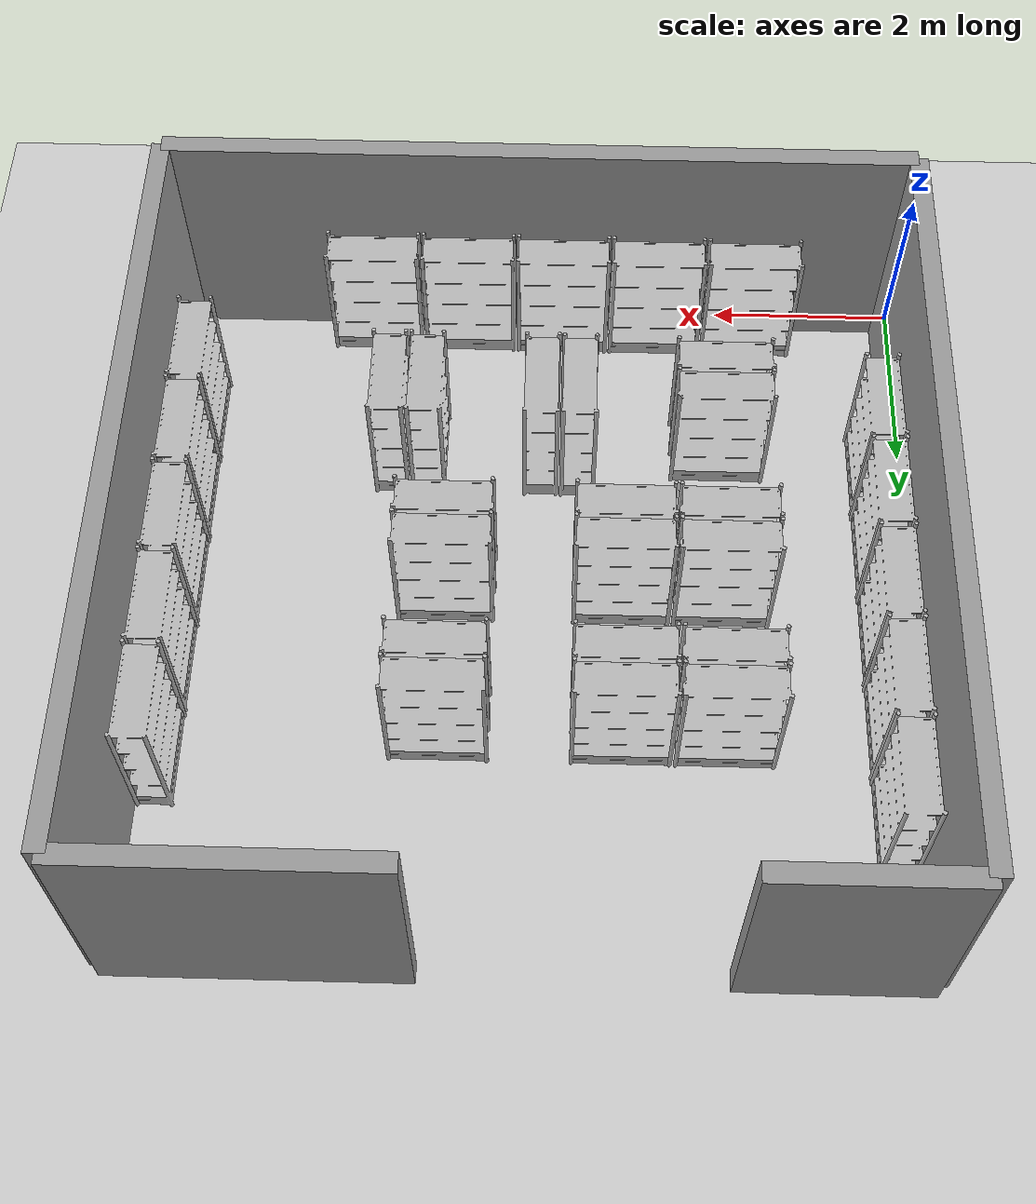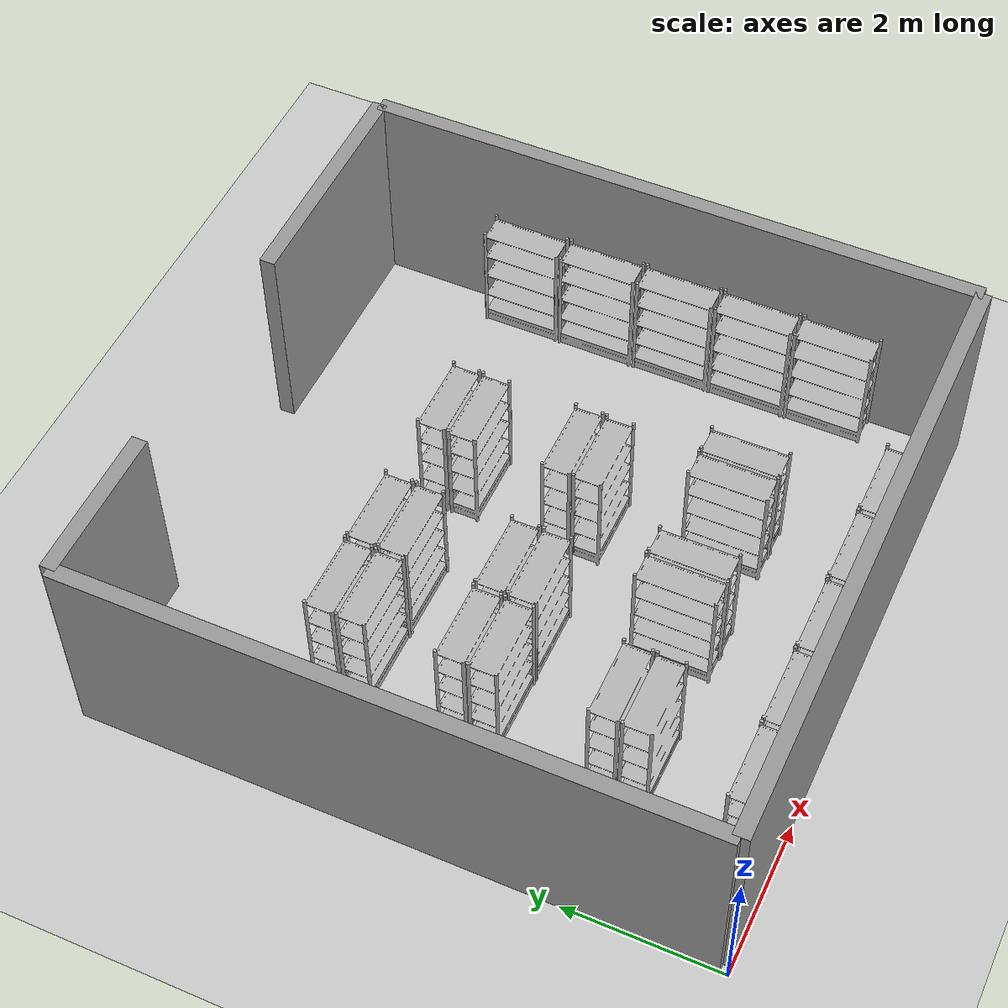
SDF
<sdf version="1.6">
  <world name="default">
    <light name="sun" type="directional">
      <cast_shadows>1</cast_shadows>
      <pose frame="">0 0 10 0 -0 0</pose>
      <diffuse>0.8 0.8 0.8 1</diffuse>
      <specular>0.2 0.2 0.2 1</specular>
      <attenuation>
        <range>1000</range>
        <constant>0.9</constant>
        <linear>0.01</linear>
        <quadratic>0.001</quadratic>
      </attenuation>
      <direction>-0.5 0.1 -0.9</direction>
    </light>
    <model name="ground_plane">
      <static>1</static>
      <link name="link">
        <collision name="collision">
          <geometry>
            <plane>
              <normal>0 0 1</normal>
              <size>100 100</size>
            </plane>
          </geometry>
          <surface>
            <contact>
              <collide_bitmask>65535</collide_bitmask>
              <ode />
            </contact>
            <friction>
              <ode>
                <mu>1000</mu>
                <mu2>1000</mu2>
              </ode>
              <torsional>
                <ode />
              </torsional>
            </friction>
            <bounce />
          </surface>
          <max_contacts>10</max_contacts>
        </collision>
        <visual name="visual">
          <cast_shadows>0</cast_shadows>
          <geometry>
            <plane>
              <normal>0 0 1</normal>
              <size>100 100</size>
            </plane>
          </geometry>
          <material>
            <script>
              <uri>file://media/materials/scripts/gazebo.material</uri>
              <name>Gazebo/Grey</name>
            </script>
          </material>
        </visual>
        <self_collide>0</self_collide>
        <enable_wind>0</enable_wind>
        <kinematic>0</kinematic>
      </link>
    </model>
    <gravity>0 0 -9.8</gravity>
    <magnetic_field>6e-06 2.3e-05 -4.2e-05</magnetic_field>
    <atmosphere type="adiabatic" />
    <physics name="default_physics" default="0" type="ode">
      <max_step_size>0.001</max_step_size>
      <real_time_factor>1</real_time_factor>
      <real_time_update_rate>1000</real_time_update_rate>
    </physics>
    <scene>
      <ambient>0.4 0.4 0.4 1</ambient>
      <background>0.7 0.7 0.7 1</background>
      <shadows>1</shadows>
    </scene>
    <audio>
      <device>default</device>
    </audio>
    <wind />
    <spherical_coordinates>
      <surface_model>EARTH_WGS84</surface_model>
      <latitude_deg>0</latitude_deg>
      <longitude_deg>0</longitude_deg>
      <elevation>0</elevation>
      <heading_deg>0</heading_deg>
    </spherical_coordinates>
    <gui fullscreen="0">
      <camera name="user_camera">
        <pose frame="">5.5458 -17.3868 19.7357 0 0.841797 1.67218</pose>
        <view_controller>orbit</view_controller>
        <projection_type>perspective</projection_type>
      </camera>
    </gui>
    <plugin name="ActorPosesPlugin" filename="libActorPosesPlugin.so" />
    <model name="store_shelf_moduled_0">
      <link name="link">
        <collision name="collision">
          <geometry>
            <mesh>
              <uri>model://store_shelf_moduled/meshes/store_shelf_moduled.dae</uri>
            </mesh>
          </geometry>
        </collision>
        <visual name="visual">
          <geometry>
            <mesh>
              <uri>model://store_shelf_moduled/meshes/store_shelf_moduled.dae</uri>
            </mesh>
          </geometry>
        </visual>
        <inertial>
          <mass>1000</mass>
          <inertia>
            <ixx>840083</ixx>
            <ixy>0</ixy>
            <ixz>0</ixz>
            <iyy>475500</iyy>
            <iyz>0</iyz>
            <izz>1.30208e+06</izz>
          </inertia>
        </inertial>
        <self_collide>0</self_collide>
        <enable_wind>0</enable_wind>
        <kinematic>0</kinematic>
      </link>
      <static>1</static>
      <pose frame="">1.16 0.2 0 0 0 0</pose>
    </model>
    <model name="store_shelf_moduled_1">
      <link name="link">
        <collision name="collision">
          <geometry>
            <mesh>
              <uri>model://store_shelf_moduled/meshes/store_shelf_moduled.dae</uri>
            </mesh>
          </geometry>
        </collision>
        <visual name="visual">
          <geometry>
            <mesh>
              <uri>model://store_shelf_moduled/meshes/store_shelf_moduled.dae</uri>
            </mesh>
          </geometry>
        </visual>
        <inertial>
          <mass>1000</mass>
          <inertia>
            <ixx>840083</ixx>
            <ixy>0</ixy>
            <ixz>0</ixz>
            <iyy>475500</iyy>
            <iyz>0</iyz>
            <izz>1.30208e+06</izz>
          </inertia>
        </inertial>
        <self_collide>0</self_collide>
        <enable_wind>0</enable_wind>
        <kinematic>0</kinematic>
      </link>
      <static>1</static>
      <pose frame="">2.22 0.2 0 0 0 0</pose>
    </model>
    <model name="store_shelf_moduled_2">
      <link name="link">
        <collision name="collision">
          <geometry>
            <mesh>
              <uri>model://store_shelf_moduled/meshes/store_shelf_moduled.dae</uri>
            </mesh>
          </geometry>
        </collision>
        <visual name="visual">
          <geometry>
            <mesh>
              <uri>model://store_shelf_moduled/meshes/store_shelf_moduled.dae</uri>
            </mesh>
          </geometry>
        </visual>
        <inertial>
          <mass>1000</mass>
          <inertia>
            <ixx>840083</ixx>
            <ixy>0</ixy>
            <ixz>0</ixz>
            <iyy>475500</iyy>
            <iyz>0</iyz>
            <izz>1.30208e+06</izz>
          </inertia>
        </inertial>
        <self_collide>0</self_collide>
        <enable_wind>0</enable_wind>
        <kinematic>0</kinematic>
      </link>
      <static>1</static>
      <pose frame="">3.28 0.2 0 0 0 0</pose>
    </model>
    <model name="store_shelf_moduled_3">
      <link name="link">
        <collision name="collision">
          <geometry>
            <mesh>
              <uri>model://store_shelf_moduled/meshes/store_shelf_moduled.dae</uri>
            </mesh>
          </geometry>
        </collision>
        <visual name="visual">
          <geometry>
            <mesh>
              <uri>model://store_shelf_moduled/meshes/store_shelf_moduled.dae</uri>
            </mesh>
          </geometry>
        </visual>
        <inertial>
          <mass>1000</mass>
          <inertia>
            <ixx>840083</ixx>
            <ixy>0</ixy>
            <ixz>0</ixz>
            <iyy>475500</iyy>
            <iyz>0</iyz>
            <izz>1.30208e+06</izz>
          </inertia>
        </inertial>
        <self_collide>0</self_collide>
        <enable_wind>0</enable_wind>
        <kinematic>0</kinematic>
      </link>
      <static>1</static>
      <pose frame="">4.34 0.2 0 0 0 0</pose>
    </model>
    <model name="store_shelf_moduled_4">
      <link name="link">
        <collision name="collision">
          <geometry>
            <mesh>
              <uri>model://store_shelf_moduled/meshes/store_shelf_moduled.dae</uri>
            </mesh>
          </geometry>
        </collision>
        <visual name="visual">
          <geometry>
            <mesh>
              <uri>model://store_shelf_moduled/meshes/store_shelf_moduled.dae</uri>
            </mesh>
          </geometry>
        </visual>
        <inertial>
          <mass>1000</mass>
          <inertia>
            <ixx>840083</ixx>
            <ixy>0</ixy>
            <ixz>0</ixz>
            <iyy>475500</iyy>
            <iyz>0</iyz>
            <izz>1.30208e+06</izz>
          </inertia>
        </inertial>
        <self_collide>0</self_collide>
        <enable_wind>0</enable_wind>
        <kinematic>0</kinematic>
      </link>
      <static>1</static>
      <pose frame="">5.4 0.2 0 0 0 0</pose>
    </model>
    <model name="store_shelf_moduled_5">
      <link name="link">
        <collision name="collision">
          <geometry>
            <mesh>
              <uri>model://store_shelf_moduled/meshes/store_shelf_moduled.dae</uri>
            </mesh>
          </geometry>
        </collision>
        <visual name="visual">
          <geometry>
            <mesh>
              <uri>model://store_shelf_moduled/meshes/store_shelf_moduled.dae</uri>
            </mesh>
          </geometry>
        </visual>
        <inertial>
          <mass>1000</mass>
          <inertia>
            <ixx>840083</ixx>
            <ixy>0</ixy>
            <ixz>0</ixz>
            <iyy>475500</iyy>
            <iyz>0</iyz>
            <izz>1.30208e+06</izz>
          </inertia>
        </inertial>
        <self_collide>0</self_collide>
        <enable_wind>0</enable_wind>
        <kinematic>0</kinematic>
      </link>
      <static>1</static>
      <pose frame="">8 1.16 0 0 0 1.570796</pose>
    </model>
    <model name="store_shelf_moduled_6">
      <link name="link">
        <collision name="collision">
          <geometry>
            <mesh>
              <uri>model://store_shelf_moduled/meshes/store_shelf_moduled.dae</uri>
            </mesh>
          </geometry>
        </collision>
        <visual name="visual">
          <geometry>
            <mesh>
              <uri>model://store_shelf_moduled/meshes/store_shelf_moduled.dae</uri>
            </mesh>
          </geometry>
        </visual>
        <inertial>
          <mass>1000</mass>
          <inertia>
            <ixx>840083</ixx>
            <ixy>0</ixy>
            <ixz>0</ixz>
            <iyy>475500</iyy>
            <iyz>0</iyz>
            <izz>1.30208e+06</izz>
          </inertia>
        </inertial>
        <self_collide>0</self_collide>
        <enable_wind>0</enable_wind>
        <kinematic>0</kinematic>
      </link>
      <static>1</static>
      <pose frame="">8 2.22 0 0 0 1.570796</pose>
    </model>
    <model name="store_shelf_moduled_7">
      <link name="link">
        <collision name="collision">
          <geometry>
            <mesh>
              <uri>model://store_shelf_moduled/meshes/store_shelf_moduled.dae</uri>
            </mesh>
          </geometry>
        </collision>
        <visual name="visual">
          <geometry>
            <mesh>
              <uri>model://store_shelf_moduled/meshes/store_shelf_moduled.dae</uri>
            </mesh>
          </geometry>
        </visual>
        <inertial>
          <mass>1000</mass>
          <inertia>
            <ixx>840083</ixx>
            <ixy>0</ixy>
            <ixz>0</ixz>
            <iyy>475500</iyy>
            <iyz>0</iyz>
            <izz>1.30208e+06</izz>
          </inertia>
        </inertial>
        <self_collide>0</self_collide>
        <enable_wind>0</enable_wind>
        <kinematic>0</kinematic>
      </link>
      <static>1</static>
      <pose frame="">8 3.28 0 0 0 1.570796</pose>
    </model>
    <model name="store_shelf_moduled_8">
      <link name="link">
        <collision name="collision">
          <geometry>
            <mesh>
              <uri>model://store_shelf_moduled/meshes/store_shelf_moduled.dae</uri>
            </mesh>
          </geometry>
        </collision>
        <visual name="visual">
          <geometry>
            <mesh>
              <uri>model://store_shelf_moduled/meshes/store_shelf_moduled.dae</uri>
            </mesh>
          </geometry>
        </visual>
        <inertial>
          <mass>1000</mass>
          <inertia>
            <ixx>840083</ixx>
            <ixy>0</ixy>
            <ixz>0</ixz>
            <iyy>475500</iyy>
            <iyz>0</iyz>
            <izz>1.30208e+06</izz>
          </inertia>
        </inertial>
        <self_collide>0</self_collide>
        <enable_wind>0</enable_wind>
        <kinematic>0</kinematic>
      </link>
      <static>1</static>
      <pose frame="">8 4.34 0 0 0 1.570796</pose>
    </model>
    <model name="store_shelf_moduled_9">
      <link name="link">
        <collision name="collision">
          <geometry>
            <mesh>
              <uri>model://store_shelf_moduled/meshes/store_shelf_moduled.dae</uri>
            </mesh>
          </geometry>
        </collision>
        <visual name="visual">
          <geometry>
            <mesh>
              <uri>model://store_shelf_moduled/meshes/store_shelf_moduled.dae</uri>
            </mesh>
          </geometry>
        </visual>
        <inertial>
          <mass>1000</mass>
          <inertia>
            <ixx>840083</ixx>
            <ixy>0</ixy>
            <ixz>0</ixz>
            <iyy>475500</iyy>
            <iyz>0</iyz>
            <izz>1.30208e+06</izz>
          </inertia>
        </inertial>
        <self_collide>0</self_collide>
        <enable_wind>0</enable_wind>
        <kinematic>0</kinematic>
      </link>
      <static>1</static>
      <pose frame="">8 5.4 0 0 0 1.570796</pose>
    </model>
    <model name="store_shelf_moduled_10">
      <link name="link">
        <collision name="collision">
          <geometry>
            <mesh>
              <uri>model://store_shelf_moduled/meshes/store_shelf_moduled.dae</uri>
            </mesh>
          </geometry>
        </collision>
        <visual name="visual">
          <geometry>
            <mesh>
              <uri>model://store_shelf_moduled/meshes/store_shelf_moduled.dae</uri>
            </mesh>
          </geometry>
        </visual>
        <inertial>
          <mass>1000</mass>
          <inertia>
            <ixx>840083</ixx>
            <ixy>0</ixy>
            <ixz>0</ixz>
            <iyy>475500</iyy>
            <iyz>0</iyz>
            <izz>1.30208e+06</izz>
          </inertia>
        </inertial>
        <self_collide>0</self_collide>
        <enable_wind>0</enable_wind>
        <kinematic>0</kinematic>
      </link>
      <static>1</static>
      <pose frame="">0.2 7.04 0 0 0 -1.570796</pose>
    </model>
    <model name="store_shelf_moduled_11">
      <link name="link">
        <collision name="collision">
          <geometry>
            <mesh>
              <uri>model://store_shelf_moduled/meshes/store_shelf_moduled.dae</uri>
            </mesh>
          </geometry>
        </collision>
        <visual name="visual">
          <geometry>
            <mesh>
              <uri>model://store_shelf_moduled/meshes/store_shelf_moduled.dae</uri>
            </mesh>
          </geometry>
        </visual>
        <inertial>
          <mass>1000</mass>
          <inertia>
            <ixx>840083</ixx>
            <ixy>0</ixy>
            <ixz>0</ixz>
            <iyy>475500</iyy>
            <iyz>0</iyz>
            <izz>1.30208e+06</izz>
          </inertia>
        </inertial>
        <self_collide>0</self_collide>
        <enable_wind>0</enable_wind>
        <kinematic>0</kinematic>
      </link>
      <static>1</static>
      <pose frame="">0.2 5.98 0 0 0 -1.570796</pose>
    </model>
    <model name="store_shelf_moduled_12">
      <link name="link">
        <collision name="collision">
          <geometry>
            <mesh>
              <uri>model://store_shelf_moduled/meshes/store_shelf_moduled.dae</uri>
            </mesh>
          </geometry>
        </collision>
        <visual name="visual">
          <geometry>
            <mesh>
              <uri>model://store_shelf_moduled/meshes/store_shelf_moduled.dae</uri>
            </mesh>
          </geometry>
        </visual>
        <inertial>
          <mass>1000</mass>
          <inertia>
            <ixx>840083</ixx>
            <ixy>0</ixy>
            <ixz>0</ixz>
            <iyy>475500</iyy>
            <iyz>0</iyz>
            <izz>1.30208e+06</izz>
          </inertia>
        </inertial>
        <self_collide>0</self_collide>
        <enable_wind>0</enable_wind>
        <kinematic>0</kinematic>
      </link>
      <static>1</static>
      <pose frame="">0.2 4.92 0 0 0 -1.570796</pose>
    </model>
    <model name="store_shelf_moduled_13">
      <link name="link">
        <collision name="collision">
          <geometry>
            <mesh>
              <uri>model://store_shelf_moduled/meshes/store_shelf_moduled.dae</uri>
            </mesh>
          </geometry>
        </collision>
        <visual name="visual">
          <geometry>
            <mesh>
              <uri>model://store_shelf_moduled/meshes/store_shelf_moduled.dae</uri>
            </mesh>
          </geometry>
        </visual>
        <inertial>
          <mass>1000</mass>
          <inertia>
            <ixx>840083</ixx>
            <ixy>0</ixy>
            <ixz>0</ixz>
            <iyy>475500</iyy>
            <iyz>0</iyz>
            <izz>1.30208e+06</izz>
          </inertia>
        </inertial>
        <self_collide>0</self_collide>
        <enable_wind>0</enable_wind>
        <kinematic>0</kinematic>
      </link>
      <static>1</static>
      <pose frame="">0.2 3.86 0 0 0 -1.570796</pose>
    </model>
    <model name="store_shelf_moduled_14">
      <link name="link">
        <collision name="collision">
          <geometry>
            <mesh>
              <uri>model://store_shelf_moduled/meshes/store_shelf_moduled.dae</uri>
            </mesh>
          </geometry>
        </collision>
        <visual name="visual">
          <geometry>
            <mesh>
              <uri>model://store_shelf_moduled/meshes/store_shelf_moduled.dae</uri>
            </mesh>
          </geometry>
        </visual>
        <inertial>
          <mass>1000</mass>
          <inertia>
            <ixx>840083</ixx>
            <ixy>0</ixy>
            <ixz>0</ixz>
            <iyy>475500</iyy>
            <iyz>0</iyz>
            <izz>1.30208e+06</izz>
          </inertia>
        </inertial>
        <self_collide>0</self_collide>
        <enable_wind>0</enable_wind>
        <kinematic>0</kinematic>
      </link>
      <static>1</static>
      <pose frame="">0.2 2.8 0 0 0 -1.570796</pose>
    </model>
    <model name="store_shelf_moduled_15">
      <link name="link">
        <collision name="collision">
          <geometry>
            <mesh>
              <uri>model://store_shelf_moduled/meshes/store_shelf_moduled.dae</uri>
            </mesh>
          </geometry>
        </collision>
        <visual name="visual">
          <geometry>
            <mesh>
              <uri>model://store_shelf_moduled/meshes/store_shelf_moduled.dae</uri>
            </mesh>
          </geometry>
        </visual>
        <inertial>
          <mass>1000</mass>
          <inertia>
            <ixx>840083</ixx>
            <ixy>0</ixy>
            <ixz>0</ixz>
            <iyy>475500</iyy>
            <iyz>0</iyz>
            <izz>1.30208e+06</izz>
          </inertia>
        </inertial>
        <self_collide>0</self_collide>
        <enable_wind>0</enable_wind>
        <kinematic>0</kinematic>
      </link>
      <static>1</static>
      <pose frame="">4.45 5.48 0 0 0 0</pose>
    </model>
    <model name="store_shelf_moduled_16">
      <link name="link">
        <collision name="collision">
          <geometry>
            <mesh>
              <uri>model://store_shelf_moduled/meshes/store_shelf_moduled.dae</uri>
            </mesh>
          </geometry>
        </collision>
        <visual name="visual">
          <geometry>
            <mesh>
              <uri>model://store_shelf_moduled/meshes/store_shelf_moduled.dae</uri>
            </mesh>
          </geometry>
        </visual>
        <inertial>
          <mass>1000</mass>
          <inertia>
            <ixx>840083</ixx>
            <ixy>0</ixy>
            <ixz>0</ixz>
            <iyy>475500</iyy>
            <iyz>0</iyz>
            <izz>1.30208e+06</izz>
          </inertia>
        </inertial>
        <self_collide>0</self_collide>
        <enable_wind>0</enable_wind>
        <kinematic>0</kinematic>
      </link>
      <static>1</static>
      <pose frame="">5.51 5.48 0 0 0 -3.141593</pose>
    </model>
    <model name="store_shelf_moduled_17">
      <link name="link">
        <collision name="collision">
          <geometry>
            <mesh>
              <uri>model://store_shelf_moduled/meshes/store_shelf_moduled.dae</uri>
            </mesh>
          </geometry>
        </collision>
        <visual name="visual">
          <geometry>
            <mesh>
              <uri>model://store_shelf_moduled/meshes/store_shelf_moduled.dae</uri>
            </mesh>
          </geometry>
        </visual>
        <inertial>
          <mass>1000</mass>
          <inertia>
            <ixx>840083</ixx>
            <ixy>0</ixy>
            <ixz>0</ixz>
            <iyy>475500</iyy>
            <iyz>0</iyz>
            <izz>1.30208e+06</izz>
          </inertia>
        </inertial>
        <self_collide>0</self_collide>
        <enable_wind>0</enable_wind>
        <kinematic>0</kinematic>
      </link>
      <static>1</static>
      <pose frame="">5.45 1.56 0 0 0 1.570796</pose>
    </model>
    <model name="store_shelf_moduled_18">
      <link name="link">
        <collision name="collision">
          <geometry>
            <mesh>
              <uri>model://store_shelf_moduled/meshes/store_shelf_moduled.dae</uri>
            </mesh>
          </geometry>
        </collision>
        <visual name="visual">
          <geometry>
            <mesh>
              <uri>model://store_shelf_moduled/meshes/store_shelf_moduled.dae</uri>
            </mesh>
          </geometry>
        </visual>
        <inertial>
          <mass>1000</mass>
          <inertia>
            <ixx>840083</ixx>
            <ixy>0</ixy>
            <ixz>0</ixz>
            <iyy>475500</iyy>
            <iyz>0</iyz>
            <izz>1.30208e+06</izz>
          </inertia>
        </inertial>
        <self_collide>0</self_collide>
        <enable_wind>0</enable_wind>
        <kinematic>0</kinematic>
      </link>
      <static>1</static>
      <pose frame="">5.45 2.62 0 0 0 -1.570796</pose>
    </model>
    <model name="store_shelf_moduled_19">
      <link name="link">
        <collision name="collision">
          <geometry>
            <mesh>
              <uri>model://store_shelf_moduled/meshes/store_shelf_moduled.dae</uri>
            </mesh>
          </geometry>
        </collision>
        <visual name="visual">
          <geometry>
            <mesh>
              <uri>model://store_shelf_moduled/meshes/store_shelf_moduled.dae</uri>
            </mesh>
          </geometry>
        </visual>
        <inertial>
          <mass>1000</mass>
          <inertia>
            <ixx>840083</ixx>
            <ixy>0</ixy>
            <ixz>0</ixz>
            <iyy>475500</iyy>
            <iyz>0</iyz>
            <izz>1.30208e+06</izz>
          </inertia>
        </inertial>
        <self_collide>0</self_collide>
        <enable_wind>0</enable_wind>
        <kinematic>0</kinematic>
      </link>
      <static>1</static>
      <pose frame="">4.45 3.84 0 0 0 0</pose>
    </model>
    <model name="store_shelf_moduled_20">
      <link name="link">
        <collision name="collision">
          <geometry>
            <mesh>
              <uri>model://store_shelf_moduled/meshes/store_shelf_moduled.dae</uri>
            </mesh>
          </geometry>
        </collision>
        <visual name="visual">
          <geometry>
            <mesh>
              <uri>model://store_shelf_moduled/meshes/store_shelf_moduled.dae</uri>
            </mesh>
          </geometry>
        </visual>
        <inertial>
          <mass>1000</mass>
          <inertia>
            <ixx>840083</ixx>
            <ixy>0</ixy>
            <ixz>0</ixz>
            <iyy>475500</iyy>
            <iyz>0</iyz>
            <izz>1.30208e+06</izz>
          </inertia>
        </inertial>
        <self_collide>0</self_collide>
        <enable_wind>0</enable_wind>
        <kinematic>0</kinematic>
      </link>
      <static>1</static>
      <pose frame="">5.51 3.84 0 0 0 -3.141593</pose>
    </model>
    <model name="store_shelf_moduled_21">
      <link name="link">
        <collision name="collision">
          <geometry>
            <mesh>
              <uri>model://store_shelf_moduled/meshes/store_shelf_moduled.dae</uri>
            </mesh>
          </geometry>
        </collision>
        <visual name="visual">
          <geometry>
            <mesh>
              <uri>model://store_shelf_moduled/meshes/store_shelf_moduled.dae</uri>
            </mesh>
          </geometry>
        </visual>
        <inertial>
          <mass>1000</mass>
          <inertia>
            <ixx>840083</ixx>
            <ixy>0</ixy>
            <ixz>0</ixz>
            <iyy>475500</iyy>
            <iyz>0</iyz>
            <izz>1.30208e+06</izz>
          </inertia>
        </inertial>
        <self_collide>0</self_collide>
        <enable_wind>0</enable_wind>
        <kinematic>0</kinematic>
      </link>
      <static>1</static>
      <pose frame="">1.53 3.84 0 0 0 0</pose>
    </model>
    <model name="store_shelf_moduled_22">
      <link name="link">
        <collision name="collision">
          <geometry>
            <mesh>
              <uri>model://store_shelf_moduled/meshes/store_shelf_moduled.dae</uri>
            </mesh>
          </geometry>
        </collision>
        <visual name="visual">
          <geometry>
            <mesh>
              <uri>model://store_shelf_moduled/meshes/store_shelf_moduled.dae</uri>
            </mesh>
          </geometry>
        </visual>
        <inertial>
          <mass>1000</mass>
          <inertia>
            <ixx>840083</ixx>
            <ixy>0</ixy>
            <ixz>0</ixz>
            <iyy>475500</iyy>
            <iyz>0</iyz>
            <izz>1.30208e+06</izz>
          </inertia>
        </inertial>
        <self_collide>0</self_collide>
        <enable_wind>0</enable_wind>
        <kinematic>0</kinematic>
      </link>
      <static>1</static>
      <pose frame="">2.59 3.84 0 0 0 -3.141593</pose>
    </model>
    <model name="store_shelf_moduled_23">
      <link name="link">
        <collision name="collision">
          <geometry>
            <mesh>
              <uri>model://store_shelf_moduled/meshes/store_shelf_moduled.dae</uri>
            </mesh>
          </geometry>
        </collision>
        <visual name="visual">
          <geometry>
            <mesh>
              <uri>model://store_shelf_moduled/meshes/store_shelf_moduled.dae</uri>
            </mesh>
          </geometry>
        </visual>
        <inertial>
          <mass>1000</mass>
          <inertia>
            <ixx>840083</ixx>
            <ixy>0</ixy>
            <ixz>0</ixz>
            <iyy>475500</iyy>
            <iyz>0</iyz>
            <izz>1.30208e+06</izz>
          </inertia>
        </inertial>
        <self_collide>0</self_collide>
        <enable_wind>0</enable_wind>
        <kinematic>0</kinematic>
      </link>
      <static>1</static>
      <pose frame="">2.59 3.84 0 0 0 0</pose>
    </model>
    <model name="store_shelf_moduled_24">
      <link name="link">
        <collision name="collision">
          <geometry>
            <mesh>
              <uri>model://store_shelf_moduled/meshes/store_shelf_moduled.dae</uri>
            </mesh>
          </geometry>
        </collision>
        <visual name="visual">
          <geometry>
            <mesh>
              <uri>model://store_shelf_moduled/meshes/store_shelf_moduled.dae</uri>
            </mesh>
          </geometry>
        </visual>
        <inertial>
          <mass>1000</mass>
          <inertia>
            <ixx>840083</ixx>
            <ixy>0</ixy>
            <ixz>0</ixz>
            <iyy>475500</iyy>
            <iyz>0</iyz>
            <izz>1.30208e+06</izz>
          </inertia>
        </inertial>
        <self_collide>0</self_collide>
        <enable_wind>0</enable_wind>
        <kinematic>0</kinematic>
      </link>
      <static>1</static>
      <pose frame="">3.65 3.84 0 0 0 -3.141593</pose>
    </model>
    <model name="store_shelf_moduled_25">
      <link name="link">
        <collision name="collision">
          <geometry>
            <mesh>
              <uri>model://store_shelf_moduled/meshes/store_shelf_moduled.dae</uri>
            </mesh>
          </geometry>
        </collision>
        <visual name="visual">
          <geometry>
            <mesh>
              <uri>model://store_shelf_moduled/meshes/store_shelf_moduled.dae</uri>
            </mesh>
          </geometry>
        </visual>
        <inertial>
          <mass>1000</mass>
          <inertia>
            <ixx>840083</ixx>
            <ixy>0</ixy>
            <ixz>0</ixz>
            <iyy>475500</iyy>
            <iyz>0</iyz>
            <izz>1.30208e+06</izz>
          </inertia>
        </inertial>
        <self_collide>0</self_collide>
        <enable_wind>0</enable_wind>
        <kinematic>0</kinematic>
      </link>
      <static>1</static>
      <pose frame="">3.81 1.56 0 0 0 1.570796</pose>
    </model>
    <model name="store_shelf_moduled_26">
      <link name="link">
        <collision name="collision">
          <geometry>
            <mesh>
              <uri>model://store_shelf_moduled/meshes/store_shelf_moduled.dae</uri>
            </mesh>
          </geometry>
        </collision>
        <visual name="visual">
          <geometry>
            <mesh>
              <uri>model://store_shelf_moduled/meshes/store_shelf_moduled.dae</uri>
            </mesh>
          </geometry>
        </visual>
        <inertial>
          <mass>1000</mass>
          <inertia>
            <ixx>840083</ixx>
            <ixy>0</ixy>
            <ixz>0</ixz>
            <iyy>475500</iyy>
            <iyz>0</iyz>
            <izz>1.30208e+06</izz>
          </inertia>
        </inertial>
        <self_collide>0</self_collide>
        <enable_wind>0</enable_wind>
        <kinematic>0</kinematic>
      </link>
      <static>1</static>
      <pose frame="">3.81 2.62 0 0 0 -1.570796</pose>
    </model>
    <model name="store_shelf_moduled_27">
      <link name="link">
        <collision name="collision">
          <geometry>
            <mesh>
              <uri>model://store_shelf_moduled/meshes/store_shelf_moduled.dae</uri>
            </mesh>
          </geometry>
        </collision>
        <visual name="visual">
          <geometry>
            <mesh>
              <uri>model://store_shelf_moduled/meshes/store_shelf_moduled.dae</uri>
            </mesh>
          </geometry>
        </visual>
        <inertial>
          <mass>1000</mass>
          <inertia>
            <ixx>840083</ixx>
            <ixy>0</ixy>
            <ixz>0</ixz>
            <iyy>475500</iyy>
            <iyz>0</iyz>
            <izz>1.30208e+06</izz>
          </inertia>
        </inertial>
        <self_collide>0</self_collide>
        <enable_wind>0</enable_wind>
        <kinematic>0</kinematic>
      </link>
      <static>1</static>
      <pose frame="">1.53 5.48 0 0 0 0</pose>
    </model>
    <model name="store_shelf_moduled_28">
      <link name="link">
        <collision name="collision">
          <geometry>
            <mesh>
              <uri>model://store_shelf_moduled/meshes/store_shelf_moduled.dae</uri>
            </mesh>
          </geometry>
        </collision>
        <visual name="visual">
          <geometry>
            <mesh>
              <uri>model://store_shelf_moduled/meshes/store_shelf_moduled.dae</uri>
            </mesh>
          </geometry>
        </visual>
        <inertial>
          <mass>1000</mass>
          <inertia>
            <ixx>840083</ixx>
            <ixy>0</ixy>
            <ixz>0</ixz>
            <iyy>475500</iyy>
            <iyz>0</iyz>
            <izz>1.30208e+06</izz>
          </inertia>
        </inertial>
        <self_collide>0</self_collide>
        <enable_wind>0</enable_wind>
        <kinematic>0</kinematic>
      </link>
      <static>1</static>
      <pose frame="">2.59 5.48 0 0 0 -3.141593</pose>
    </model>
    <model name="store_shelf_moduled_29">
      <link name="link">
        <collision name="collision">
          <geometry>
            <mesh>
              <uri>model://store_shelf_moduled/meshes/store_shelf_moduled.dae</uri>
            </mesh>
          </geometry>
        </collision>
        <visual name="visual">
          <geometry>
            <mesh>
              <uri>model://store_shelf_moduled/meshes/store_shelf_moduled.dae</uri>
            </mesh>
          </geometry>
        </visual>
        <inertial>
          <mass>1000</mass>
          <inertia>
            <ixx>840083</ixx>
            <ixy>0</ixy>
            <ixz>0</ixz>
            <iyy>475500</iyy>
            <iyz>0</iyz>
            <izz>1.30208e+06</izz>
          </inertia>
        </inertial>
        <self_collide>0</self_collide>
        <enable_wind>0</enable_wind>
        <kinematic>0</kinematic>
      </link>
      <static>1</static>
      <pose frame="">2.59 5.48 0 0 0 0</pose>
    </model>
    <model name="store_shelf_moduled_30">
      <link name="link">
        <collision name="collision">
          <geometry>
            <mesh>
              <uri>model://store_shelf_moduled/meshes/store_shelf_moduled.dae</uri>
            </mesh>
          </geometry>
        </collision>
        <visual name="visual">
          <geometry>
            <mesh>
              <uri>model://store_shelf_moduled/meshes/store_shelf_moduled.dae</uri>
            </mesh>
          </geometry>
        </visual>
        <inertial>
          <mass>1000</mass>
          <inertia>
            <ixx>840083</ixx>
            <ixy>0</ixy>
            <ixz>0</ixz>
            <iyy>475500</iyy>
            <iyz>0</iyz>
            <izz>1.30208e+06</izz>
          </inertia>
        </inertial>
        <self_collide>0</self_collide>
        <enable_wind>0</enable_wind>
        <kinematic>0</kinematic>
      </link>
      <static>1</static>
      <pose frame="">3.65 5.48 0 0 0 -3.141593</pose>
    </model>
    <model name="store_shelf_moduled_31">
      <link name="link">
        <collision name="collision">
          <geometry>
            <mesh>
              <uri>model://store_shelf_moduled/meshes/store_shelf_moduled.dae</uri>
            </mesh>
          </geometry>
        </collision>
        <visual name="visual">
          <geometry>
            <mesh>
              <uri>model://store_shelf_moduled/meshes/store_shelf_moduled.dae</uri>
            </mesh>
          </geometry>
        </visual>
        <inertial>
          <mass>1000</mass>
          <inertia>
            <ixx>840083</ixx>
            <ixy>0</ixy>
            <ixz>0</ixz>
            <iyy>475500</iyy>
            <iyz>0</iyz>
            <izz>1.30208e+06</izz>
          </inertia>
        </inertial>
        <self_collide>0</self_collide>
        <enable_wind>0</enable_wind>
        <kinematic>0</kinematic>
      </link>
      <static>1</static>
      <pose frame="">1.53 1.98 0 0 0 0</pose>
    </model>
    <model name="store_shelf_moduled_32">
      <link name="link">
        <collision name="collision">
          <geometry>
            <mesh>
              <uri>model://store_shelf_moduled/meshes/store_shelf_moduled.dae</uri>
            </mesh>
          </geometry>
        </collision>
        <visual name="visual">
          <geometry>
            <mesh>
              <uri>model://store_shelf_moduled/meshes/store_shelf_moduled.dae</uri>
            </mesh>
          </geometry>
        </visual>
        <inertial>
          <mass>1000</mass>
          <inertia>
            <ixx>840083</ixx>
            <ixy>0</ixy>
            <ixz>0</ixz>
            <iyy>475500</iyy>
            <iyz>0</iyz>
            <izz>1.30208e+06</izz>
          </inertia>
        </inertial>
        <self_collide>0</self_collide>
        <enable_wind>0</enable_wind>
        <kinematic>0</kinematic>
      </link>
      <static>1</static>
      <pose frame="">2.59 1.98 0 0 0 -3.141593</pose>
    </model>
    <model name="grey_wall0">
      <static>1</static>
      <link name="link">
        <pose frame="">4.1 0.1 1.4 0 0 0</pose>
        <visual name="visual">
          <cast_shadows>0</cast_shadows>
          <geometry>
            <box>
              <size>8 0.2 2.8</size>
            </box>
          </geometry>
          <material>
            <name>vrc/grey_wall</name>
            <script>
              <uri>model://grey_wall/materials/scripts</uri>
              <uri>model://grey_wall/materials/textures</uri>
              <name>vrc/grey_wall</name>
            </script>
          </material>
        </visual>
        <collision name="collision">
          <geometry>
            <box>
              <size>8 0.2 2.8</size>
            </box>
          </geometry>
          <max_contacts>5</max_contacts>
        </collision>
      </link>
    </model>
    <model name="grey_wall1">
      <static>1</static>
      <link name="link">
        <pose frame="">8.1 4.1 1.4 0 0 1.570796</pose>
        <visual name="visual">
          <cast_shadows>0</cast_shadows>
          <geometry>
            <box>
              <size>8 0.2 2.8</size>
            </box>
          </geometry>
          <material>
            <name>vrc/grey_wall</name>
            <script>
              <uri>model://grey_wall/materials/scripts</uri>
              <uri>model://grey_wall/materials/textures</uri>
              <name>vrc/grey_wall</name>
            </script>
          </material>
        </visual>
        <collision name="collision">
          <geometry>
            <box>
              <size>8 0.2 2.8</size>
            </box>
          </geometry>
          <max_contacts>5</max_contacts>
        </collision>
      </link>
    </model>
    <model name="grey_wall2">
      <static>1</static>
      <link name="link">
        <pose frame="">6.585 8.1 1.4 0 0 3.141593</pose>
        <visual name="visual">
          <cast_shadows>0</cast_shadows>
          <geometry>
            <box>
              <size>3.03 0.2 2.8</size>
            </box>
          </geometry>
          <material>
            <name>vrc/grey_wall</name>
            <script>
              <uri>model://grey_wall/materials/scripts</uri>
              <uri>model://grey_wall/materials/textures</uri>
              <name>vrc/grey_wall</name>
            </script>
          </material>
        </visual>
        <collision name="collision">
          <geometry>
            <box>
              <size>3.03 0.2 2.8</size>
            </box>
          </geometry>
          <max_contacts>5</max_contacts>
        </collision>
      </link>
    </model>
    <model name="grey_wall3">
      <static>1</static>
      <link name="link">
        <pose frame="">1.085 8.1 1.4 0 0 3.141593</pose>
        <visual name="visual">
          <cast_shadows>0</cast_shadows>
          <geometry>
            <box>
              <size>1.97 0.2 2.8</size>
            </box>
          </geometry>
          <material>
            <name>vrc/grey_wall</name>
            <script>
              <uri>model://grey_wall/materials/scripts</uri>
              <uri>model://grey_wall/materials/textures</uri>
              <name>vrc/grey_wall</name>
            </script>
          </material>
        </visual>
        <collision name="collision">
          <geometry>
            <box>
              <size>1.97 0.2 2.8</size>
            </box>
          </geometry>
          <max_contacts>5</max_contacts>
        </collision>
      </link>
    </model>
    <model name="grey_wall4">
      <static>1</static>
      <link name="link">
        <pose frame="">0.1 4.1 1.4 0 0 -1.570796</pose>
        <visual name="visual">
          <cast_shadows>0</cast_shadows>
          <geometry>
            <box>
              <size>8 0.2 2.8</size>
            </box>
          </geometry>
          <material>
            <name>vrc/grey_wall</name>
            <script>
              <uri>model://grey_wall/materials/scripts</uri>
              <uri>model://grey_wall/materials/textures</uri>
              <name>vrc/grey_wall</name>
            </script>
          </material>
        </visual>
        <collision name="collision">
          <geometry>
            <box>
              <size>8 0.2 2.8</size>
            </box>
          </geometry>
          <max_contacts>5</max_contacts>
        </collision>
      </link>
    </model>
  </world>
</sdf>
